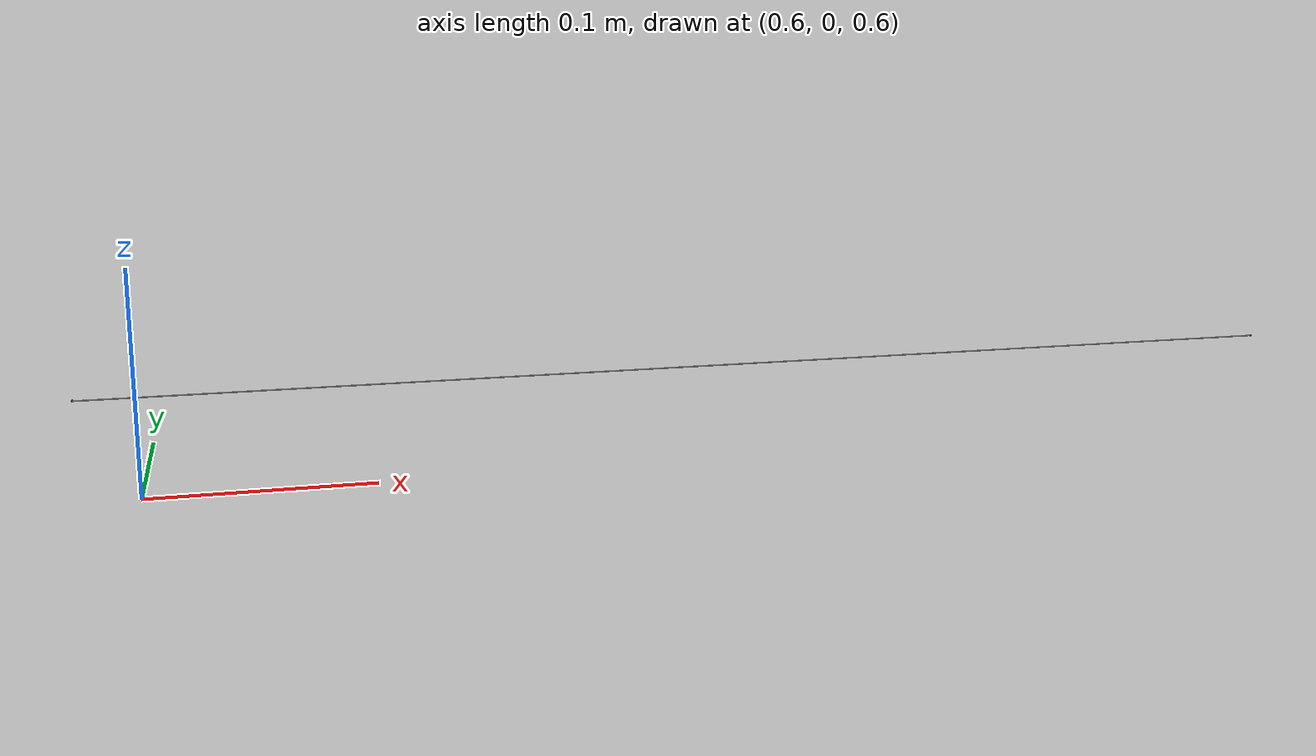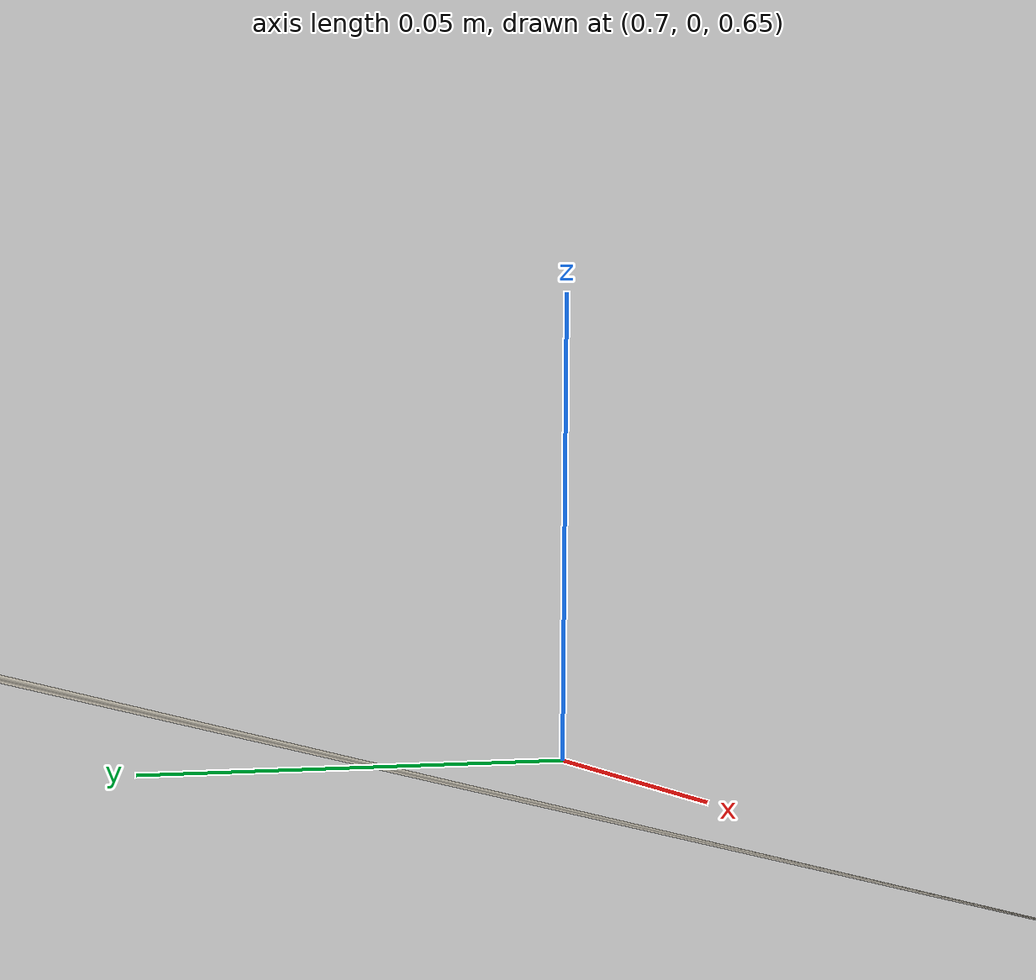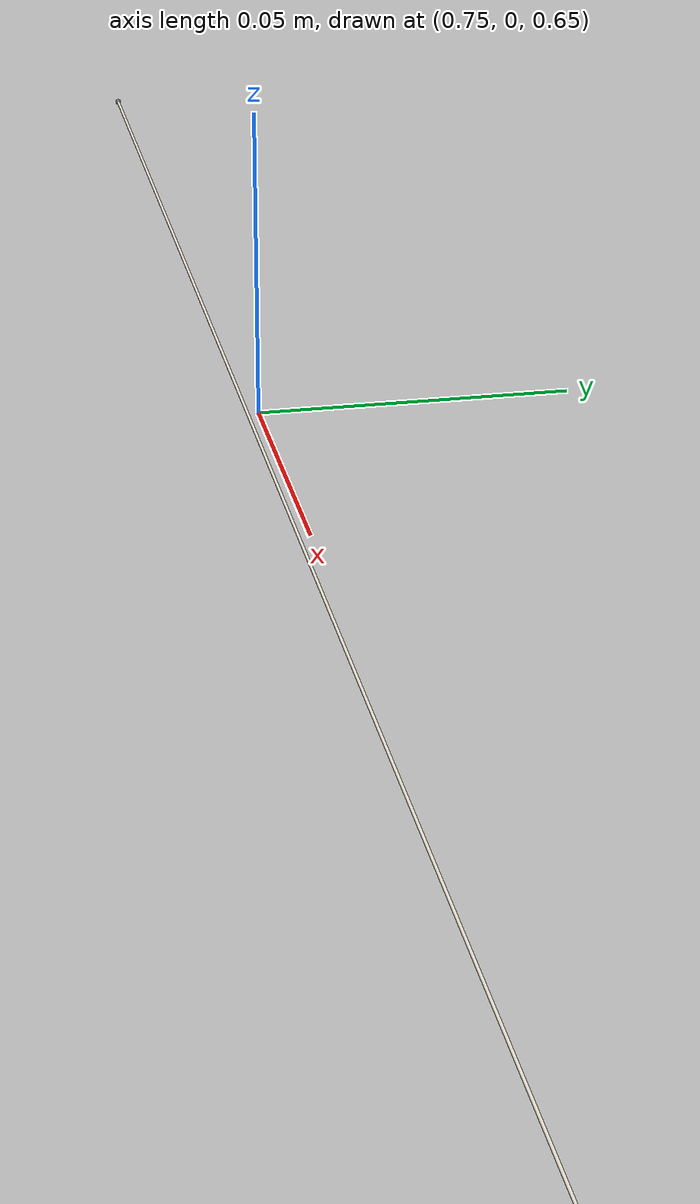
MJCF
<mujoco model="bow">
    <default>
        <default class="bow_link">
            <joint stiffness="15" springref="0" damping="0.1"/>
        </default>

        <default class="bow_hair">
            <geom type="capsule" size="0.00025" rgba="0.95 0.92 0.85 1"
                  contype="2" conaffinity="1"
                  friction="1.2 0.02 0.001" solref="0.001 1" solimp="0.9 0.99 0.0005" condim="3"/>
        </default>
    </default>
        <!-- ============================== BOW ================================ -->
        <worldbody>
            <!-- ============================ BOW HAIR ============================== -->
            <body name="bow_hair" pos="0.575 0 0.645">
                <joint name="bow_hair_free" type="free" damping="0.0001"/>
                <geom name="bow_hair_geom" class="bow_hair" fromto="0 0 0  0.558 0 0" mass="0.002016"/>
                <site name="bow_hair_frog_site" pos="0 0 0" size="0.0005"/>
                <site name="bow_hair_tip_site" pos="0.558 0 0" size="0.0005"/>
            </body>
        </worldbody>
    </mujoco>
